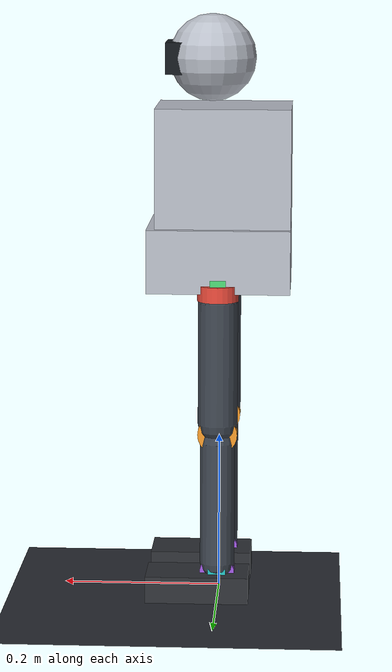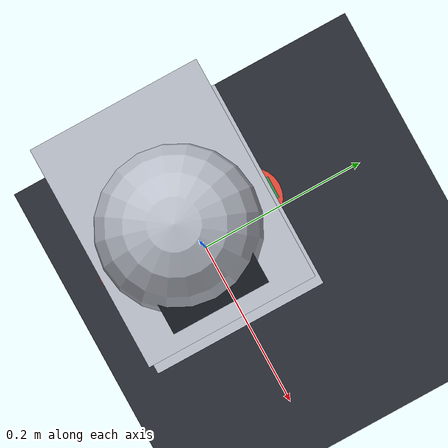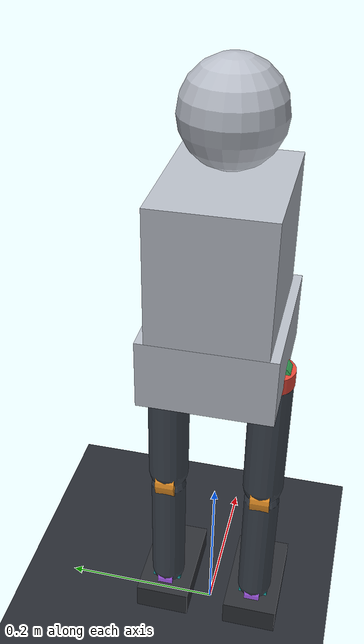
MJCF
<mujoco model="Pebble 6DOF Educational Biped">
  <compiler angle="degree" autolimits="true"/>
  <option timestep="0.002" integrator="implicitfast" gravity="0 0 -9.81"/>

  <visual>
    <headlight diffuse="0.75 0.75 0.75" ambient="0.35 0.35 0.35" specular="0.2 0.2 0.2"/>
    <rgba haze="0.12 0.14 0.18 1"/>
    <global azimuth="135" elevation="-18"/>
  </visual>

  <asset>
    <texture name="grid" type="2d" builtin="checker" rgb1="0.19 0.21 0.24" rgb2="0.12 0.13 0.15" width="512" height="512"/>
    <material name="floor_mat" texture="grid" texrepeat="10 10" reflectance="0.08"/>
    <material name="body_mat" rgba="0.72 0.74 0.78 1"/>
    <material name="link_mat" rgba="0.24 0.27 0.31 1"/>
    <material name="foot_mat" rgba="0.18 0.19 0.21 1"/>

    <!-- Motor colors: M1..M6 -->
  </asset>

  <default>
    <joint type="hinge" damping="0.5" armature="0.012" frictionloss="0.015"/>
    <geom condim="3" friction="0.9 0.01 0.0002"/>
    <position kp="80" kv="5"/>
  </default>

  <worldbody>
    <light pos="0 -1.5 2.2" dir="0 0.5 -1" diffuse="0.8 0.8 0.8"/>
    <geom name="floor" type="plane" size="2.5 2.5 0.1" material="floor_mat" friction="1.0 0.01 0.0002"/>

    <!-- Fixed pelvis is intentional for the first educational joint demo. -->
    <body name="pelvis" pos="0 0 0.435">
      <geom name="pelvis_geom" type="box" size="0.09 0.075 0.04" material="body_mat" mass="0.55" contype="0" conaffinity="0"/>

      <body name="torso" pos="-0.005 0 0.115">
        <geom type="box" size="0.085 0.065 0.075" material="body_mat" mass="0.65" contype="0" conaffinity="0"/>
        <body name="head" pos="0.015 0 0.135">
          <geom type="sphere" size="0.055" material="body_mat" mass="0.18" contype="0" conaffinity="0"/>
          <geom type="box" pos="0.046 0 0" size="0.012 0.034 0.020" rgba="0.08 0.10 0.12 1" mass="0.01" contype="0" conaffinity="0"/>
        </body>
      </body>

      <!-- LEFT LEG: M1 yaw -> M2 roll -> M3 pitch -> M4 knee -> M5 ankle pitch -> M6 ankle roll -->
      <body name="l_hip_yaw_body" pos="0 0.060 -0.040">
        <joint name="l_hip_yaw" axis="0 0 1" range="-35 35"/>
        <geom name="motor_l_hip_yaw" type="cylinder" size="0.026 0.010" rgba="0.90 0.28 0.22 1" mass="0.025" contype="0" conaffinity="0"/>

        <body name="l_hip_roll_body">
          <joint name="l_hip_roll" axis="1 0 0" range="-30 30"/>
          <geom name="motor_l_hip_roll" type="cylinder" size="0.023 0.010" euler="0 90 0" rgba="0.24 0.72 0.38 1" mass="0.025" contype="0" conaffinity="0"/>

          <body name="l_hip_pitch_body">
            <joint name="l_hip_pitch" axis="0 1 0" range="-70 70"/>
            <geom name="motor_l_hip_pitch" type="cylinder" size="0.020 0.012" euler="90 0 0" rgba="0.20 0.50 0.90 1" mass="0.025" contype="0" conaffinity="0"/>

            <body name="l_thigh">
              <geom name="l_thigh_geom" type="capsule" fromto="0 0 -0.012 0 0 -0.168" size="0.025" material="link_mat" mass="0.24" contype="0" conaffinity="0"/>

              <body name="l_knee_body" pos="0 0 -0.180">
                <joint name="l_knee_pitch" axis="0 1 0" range="0 125"/>
                <geom name="motor_l_knee_pitch" type="cylinder" size="0.025 0.012" euler="90 0 0" rgba="0.95 0.60 0.16 1" mass="0.03" contype="0" conaffinity="0"/>

                <body name="l_shin">
                  <geom name="l_shin_geom" type="capsule" fromto="0 0 -0.012 0 0 -0.168" size="0.022" material="link_mat" mass="0.20" contype="0" conaffinity="0"/>

                  <body name="l_ankle_pitch_body" pos="0 0 -0.180">
                    <joint name="l_ankle_pitch" axis="0 1 0" range="-45 45"/>
                    <geom name="motor_l_ankle_pitch" type="cylinder" size="0.022 0.010" euler="90 0 0" rgba="0.62 0.34 0.88 1" mass="0.025" contype="0" conaffinity="0"/>

                    <body name="l_ankle_roll_body">
                      <joint name="l_ankle_roll" axis="1 0 0" range="-30 30"/>
                      <geom name="motor_l_ankle_roll" type="cylinder" size="0.019 0.011" euler="0 90 0" rgba="0.12 0.72 0.72 1" mass="0.025" contype="0" conaffinity="0"/>

                      <body name="l_foot" pos="0.025 0 -0.017">
                        <geom name="l_foot_geom" type="box" size="0.065 0.035 0.017" material="foot_mat" mass="0.16" friction="1.1 0.01 0.0002"/>
                        <site name="l_sole" pos="0 0 -0.017" size="0.006" rgba="1 1 1 0.35"/>
                      </body>
                    </body>
                  </body>
                </body>
              </body>
            </body>
          </body>
        </body>
      </body>

      <!-- RIGHT LEG -->
      <body name="r_hip_yaw_body" pos="0 -0.060 -0.040">
        <joint name="r_hip_yaw" axis="0 0 1" range="-35 35"/>
        <geom name="motor_r_hip_yaw" type="cylinder" size="0.026 0.010" rgba="0.90 0.28 0.22 1" mass="0.025" contype="0" conaffinity="0"/>

        <body name="r_hip_roll_body">
          <joint name="r_hip_roll" axis="1 0 0" range="-30 30"/>
          <geom name="motor_r_hip_roll" type="cylinder" size="0.023 0.010" euler="0 90 0" rgba="0.24 0.72 0.38 1" mass="0.025" contype="0" conaffinity="0"/>

          <body name="r_hip_pitch_body">
            <joint name="r_hip_pitch" axis="0 1 0" range="-70 70"/>
            <geom name="motor_r_hip_pitch" type="cylinder" size="0.020 0.012" euler="90 0 0" rgba="0.20 0.50 0.90 1" mass="0.025" contype="0" conaffinity="0"/>

            <body name="r_thigh">
              <geom name="r_thigh_geom" type="capsule" fromto="0 0 -0.012 0 0 -0.168" size="0.025" material="link_mat" mass="0.24" contype="0" conaffinity="0"/>

              <body name="r_knee_body" pos="0 0 -0.180">
                <joint name="r_knee_pitch" axis="0 1 0" range="0 125"/>
                <geom name="motor_r_knee_pitch" type="cylinder" size="0.025 0.012" euler="90 0 0" rgba="0.95 0.60 0.16 1" mass="0.03" contype="0" conaffinity="0"/>

                <body name="r_shin">
                  <geom name="r_shin_geom" type="capsule" fromto="0 0 -0.012 0 0 -0.168" size="0.022" material="link_mat" mass="0.20" contype="0" conaffinity="0"/>

                  <body name="r_ankle_pitch_body" pos="0 0 -0.180">
                    <joint name="r_ankle_pitch" axis="0 1 0" range="-45 45"/>
                    <geom name="motor_r_ankle_pitch" type="cylinder" size="0.022 0.010" euler="90 0 0" rgba="0.62 0.34 0.88 1" mass="0.025" contype="0" conaffinity="0"/>

                    <body name="r_ankle_roll_body">
                      <joint name="r_ankle_roll" axis="1 0 0" range="-30 30"/>
                      <geom name="motor_r_ankle_roll" type="cylinder" size="0.019 0.011" euler="0 90 0" rgba="0.12 0.72 0.72 1" mass="0.025" contype="0" conaffinity="0"/>

                      <body name="r_foot" pos="0.025 0 -0.017">
                        <geom name="r_foot_geom" type="box" size="0.065 0.035 0.017" material="foot_mat" mass="0.16" friction="1.1 0.01 0.0002"/>
                        <site name="r_sole" pos="0 0 -0.017" size="0.006" rgba="1 1 1 0.35"/>
                      </body>
                    </body>
                  </body>
                </body>
              </body>
            </body>
          </body>
        </body>
      </body>
    </body>
  </worldbody>

  <actuator>
    <position name="a_l_hip_yaw" joint="l_hip_yaw"/>
    <position name="a_l_hip_roll" joint="l_hip_roll"/>
    <position name="a_l_hip_pitch" joint="l_hip_pitch"/>
    <position name="a_l_knee_pitch" joint="l_knee_pitch"/>
    <position name="a_l_ankle_pitch" joint="l_ankle_pitch"/>
    <position name="a_l_ankle_roll" joint="l_ankle_roll"/>

    <position name="a_r_hip_yaw" joint="r_hip_yaw"/>
    <position name="a_r_hip_roll" joint="r_hip_roll"/>
    <position name="a_r_hip_pitch" joint="r_hip_pitch"/>
    <position name="a_r_knee_pitch" joint="r_knee_pitch"/>
    <position name="a_r_ankle_pitch" joint="r_ankle_pitch"/>
    <position name="a_r_ankle_roll" joint="r_ankle_roll"/>
  </actuator>
</mujoco>
